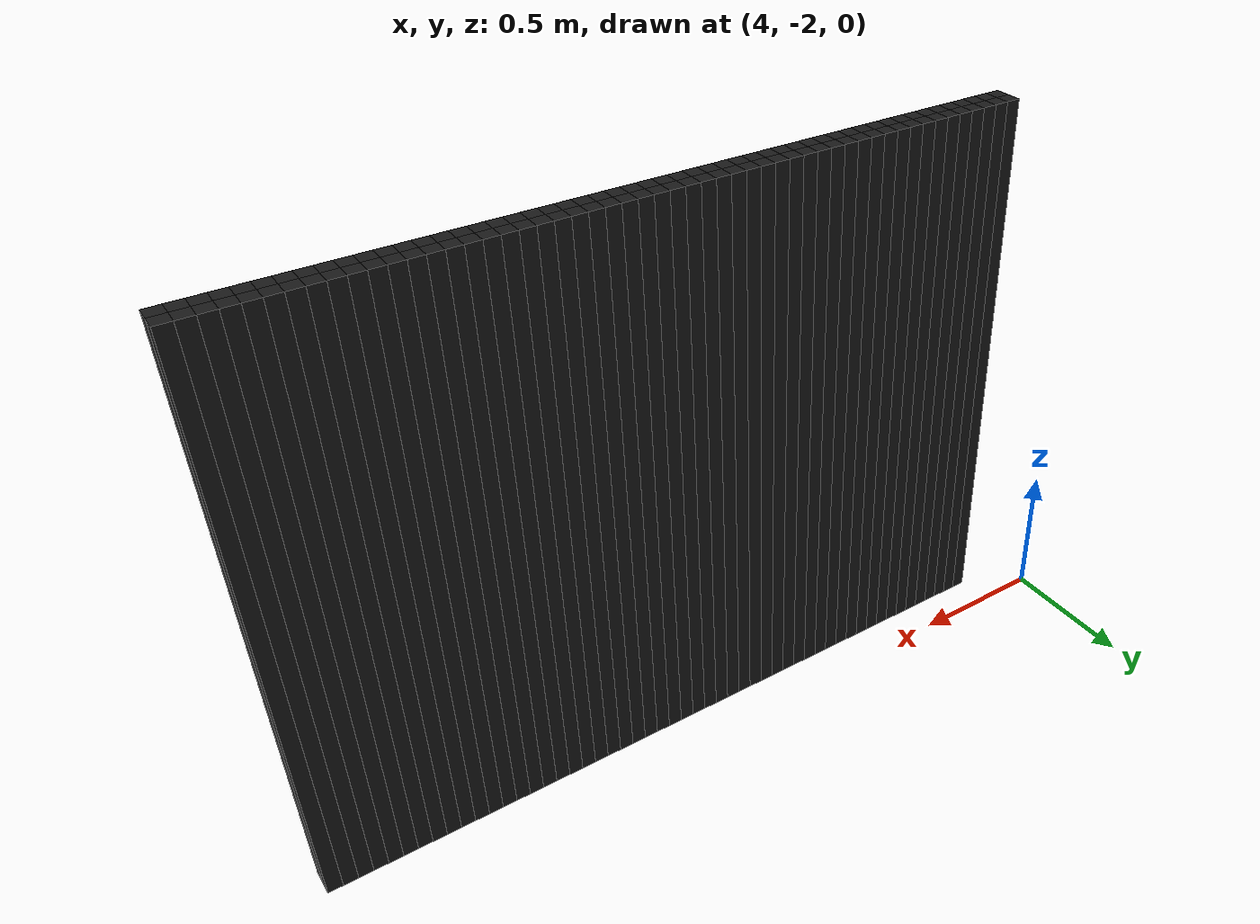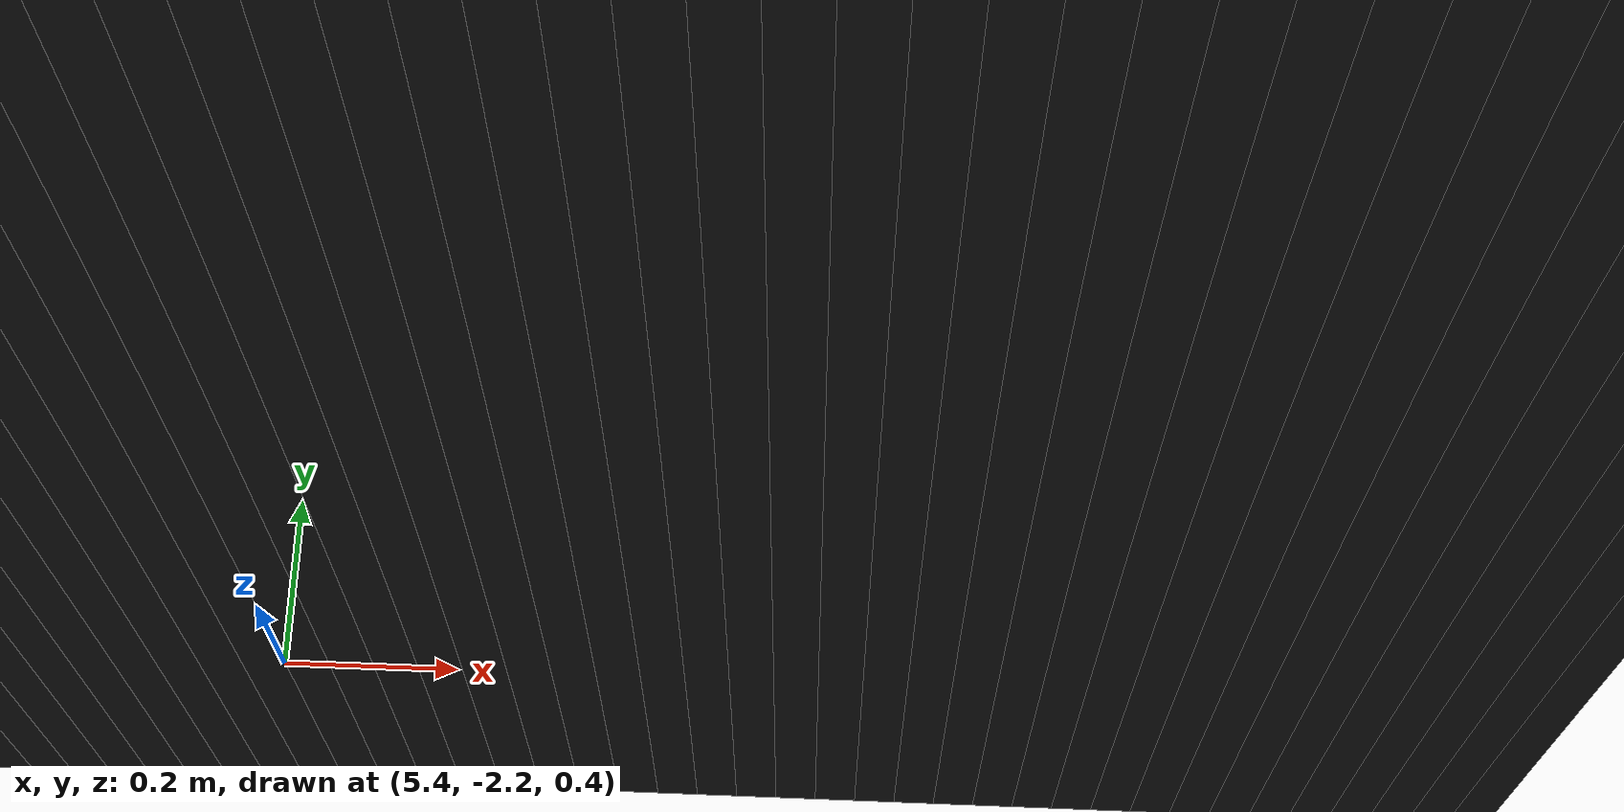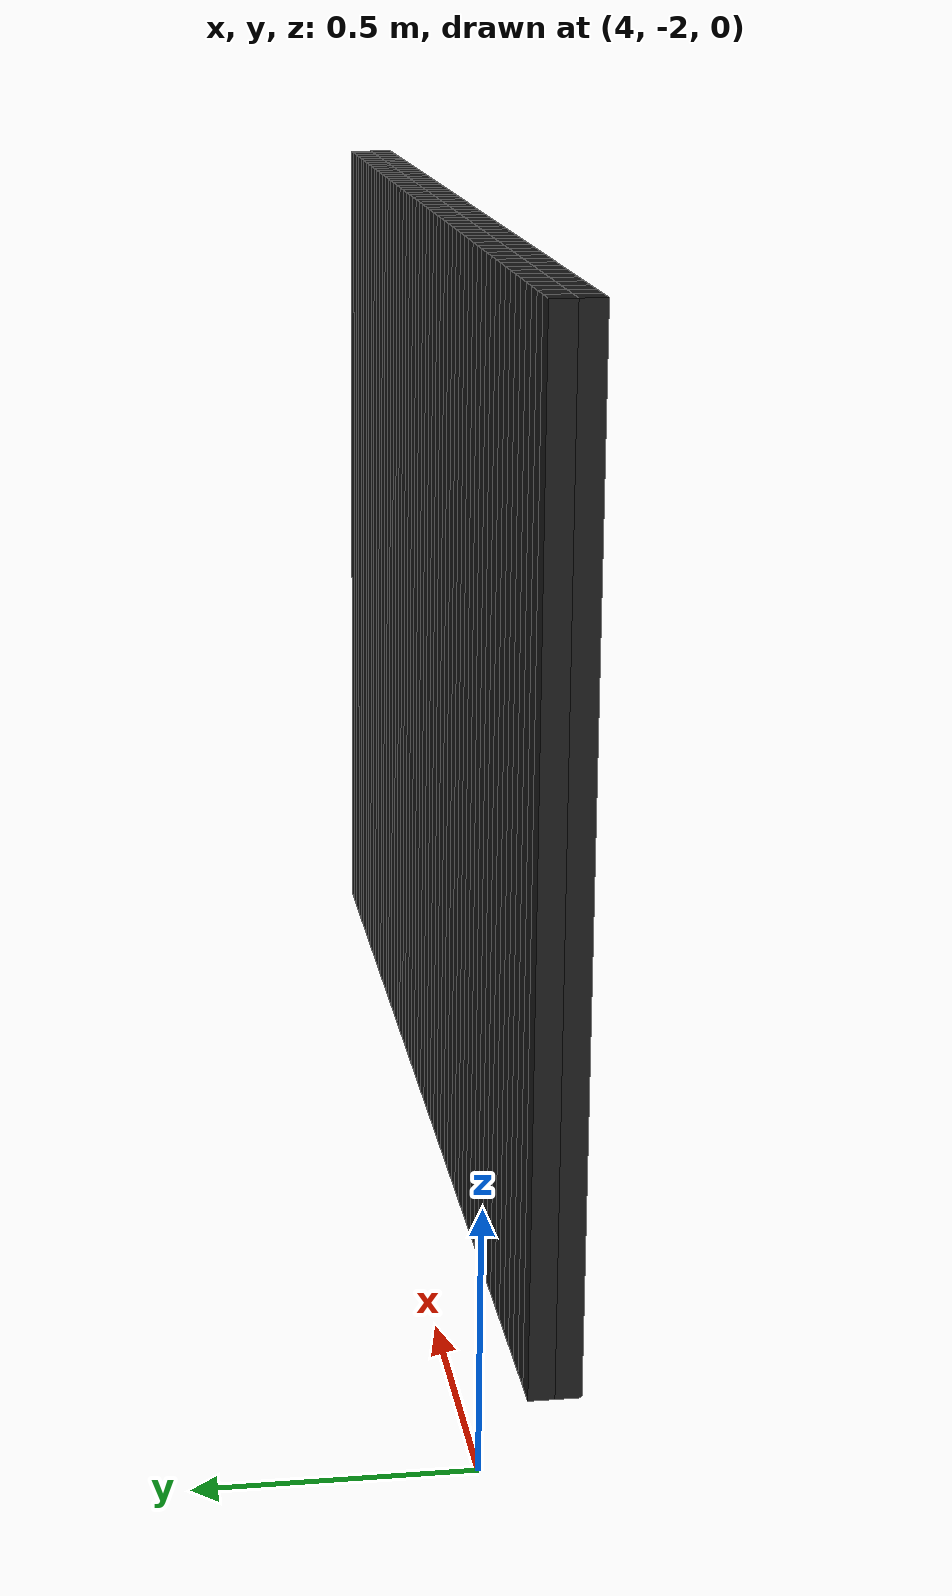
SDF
<sdf version="1.6">
 <model name="obstacle_175_210">
  <pose>4.24 -2.1500000000000004 1.0 0 0 0</pose>
  <static>true</static>
  <link name="box_link">
   <collision name="box_collision"><geometry><box><size>0.05 0.05 2.0</size></box></geometry></collision>
   <visual name="box_visual">
    <geometry><box><size>0.05 0.05 2.0</size></box></geometry>
    <material><ambient>0 0 0 1</ambient><diffuse>0.1 0.1 0.1 1</diffuse></material>
   </visual>
  </link>
 </model>
 <model name="obstacle_176_210">
  <pose>4.290000000000001 -2.1500000000000004 1.0 0 0 0</pose>
  <static>true</static>
  <link name="box_link">
   <collision name="box_collision"><geometry><box><size>0.05 0.05 2.0</size></box></geometry></collision>
   <visual name="box_visual">
    <geometry><box><size>0.05 0.05 2.0</size></box></geometry>
    <material><ambient>0 0 0 1</ambient><diffuse>0.1 0.1 0.1 1</diffuse></material>
   </visual>
  </link>
 </model>
 <model name="obstacle_177_210">
  <pose>4.34 -2.1500000000000004 1.0 0 0 0</pose>
  <static>true</static>
  <link name="box_link">
   <collision name="box_collision"><geometry><box><size>0.05 0.05 2.0</size></box></geometry></collision>
   <visual name="box_visual">
    <geometry><box><size>0.05 0.05 2.0</size></box></geometry>
    <material><ambient>0 0 0 1</ambient><diffuse>0.1 0.1 0.1 1</diffuse></material>
   </visual>
  </link>
 </model>
 <model name="obstacle_178_210">
  <pose>4.390000000000001 -2.1500000000000004 1.0 0 0 0</pose>
  <static>true</static>
  <link name="box_link">
   <collision name="box_collision"><geometry><box><size>0.05 0.05 2.0</size></box></geometry></collision>
   <visual name="box_visual">
    <geometry><box><size>0.05 0.05 2.0</size></box></geometry>
    <material><ambient>0 0 0 1</ambient><diffuse>0.1 0.1 0.1 1</diffuse></material>
   </visual>
  </link>
 </model>
 <model name="obstacle_179_210">
  <pose>4.440000000000001 -2.1500000000000004 1.0 0 0 0</pose>
  <static>true</static>
  <link name="box_link">
   <collision name="box_collision"><geometry><box><size>0.05 0.05 2.0</size></box></geometry></collision>
   <visual name="box_visual">
    <geometry><box><size>0.05 0.05 2.0</size></box></geometry>
    <material><ambient>0 0 0 1</ambient><diffuse>0.1 0.1 0.1 1</diffuse></material>
   </visual>
  </link>
 </model>
 <model name="obstacle_180_210">
  <pose>4.49 -2.1500000000000004 1.0 0 0 0</pose>
  <static>true</static>
  <link name="box_link">
   <collision name="box_collision"><geometry><box><size>0.05 0.05 2.0</size></box></geometry></collision>
   <visual name="box_visual">
    <geometry><box><size>0.05 0.05 2.0</size></box></geometry>
    <material><ambient>0 0 0 1</ambient><diffuse>0.1 0.1 0.1 1</diffuse></material>
   </visual>
  </link>
 </model>
 <model name="obstacle_181_210">
  <pose>4.540000000000001 -2.1500000000000004 1.0 0 0 0</pose>
  <static>true</static>
  <link name="box_link">
   <collision name="box_collision"><geometry><box><size>0.05 0.05 2.0</size></box></geometry></collision>
   <visual name="box_visual">
    <geometry><box><size>0.05 0.05 2.0</size></box></geometry>
    <material><ambient>0 0 0 1</ambient><diffuse>0.1 0.1 0.1 1</diffuse></material>
   </visual>
  </link>
 </model>
 <model name="obstacle_182_210">
  <pose>4.59 -2.1500000000000004 1.0 0 0 0</pose>
  <static>true</static>
  <link name="box_link">
   <collision name="box_collision"><geometry><box><size>0.05 0.05 2.0</size></box></geometry></collision>
   <visual name="box_visual">
    <geometry><box><size>0.05 0.05 2.0</size></box></geometry>
    <material><ambient>0 0 0 1</ambient><diffuse>0.1 0.1 0.1 1</diffuse></material>
   </visual>
  </link>
 </model>
 <model name="obstacle_183_210">
  <pose>4.640000000000001 -2.1500000000000004 1.0 0 0 0</pose>
  <static>true</static>
  <link name="box_link">
   <collision name="box_collision"><geometry><box><size>0.05 0.05 2.0</size></box></geometry></collision>
   <visual name="box_visual">
    <geometry><box><size>0.05 0.05 2.0</size></box></geometry>
    <material><ambient>0 0 0 1</ambient><diffuse>0.1 0.1 0.1 1</diffuse></material>
   </visual>
  </link>
 </model>
 <model name="obstacle_184_210">
  <pose>4.690000000000001 -2.1500000000000004 1.0 0 0 0</pose>
  <static>true</static>
  <link name="box_link">
   <collision name="box_collision"><geometry><box><size>0.05 0.05 2.0</size></box></geometry></collision>
   <visual name="box_visual">
    <geometry><box><size>0.05 0.05 2.0</size></box></geometry>
    <material><ambient>0 0 0 1</ambient><diffuse>0.1 0.1 0.1 1</diffuse></material>
   </visual>
  </link>
 </model>
 <model name="obstacle_185_210">
  <pose>4.74 -2.1500000000000004 1.0 0 0 0</pose>
  <static>true</static>
  <link name="box_link">
   <collision name="box_collision"><geometry><box><size>0.05 0.05 2.0</size></box></geometry></collision>
   <visual name="box_visual">
    <geometry><box><size>0.05 0.05 2.0</size></box></geometry>
    <material><ambient>0 0 0 1</ambient><diffuse>0.1 0.1 0.1 1</diffuse></material>
   </visual>
  </link>
 </model>
 <model name="obstacle_186_210">
  <pose>4.790000000000001 -2.1500000000000004 1.0 0 0 0</pose>
  <static>true</static>
  <link name="box_link">
   <collision name="box_collision"><geometry><box><size>0.05 0.05 2.0</size></box></geometry></collision>
   <visual name="box_visual">
    <geometry><box><size>0.05 0.05 2.0</size></box></geometry>
    <material><ambient>0 0 0 1</ambient><diffuse>0.1 0.1 0.1 1</diffuse></material>
   </visual>
  </link>
 </model>
 <model name="obstacle_187_210">
  <pose>4.84 -2.1500000000000004 1.0 0 0 0</pose>
  <static>true</static>
  <link name="box_link">
   <collision name="box_collision"><geometry><box><size>0.05 0.05 2.0</size></box></geometry></collision>
   <visual name="box_visual">
    <geometry><box><size>0.05 0.05 2.0</size></box></geometry>
    <material><ambient>0 0 0 1</ambient><diffuse>0.1 0.1 0.1 1</diffuse></material>
   </visual>
  </link>
 </model>
 <model name="obstacle_188_210">
  <pose>4.890000000000001 -2.1500000000000004 1.0 0 0 0</pose>
  <static>true</static>
  <link name="box_link">
   <collision name="box_collision"><geometry><box><size>0.05 0.05 2.0</size></box></geometry></collision>
   <visual name="box_visual">
    <geometry><box><size>0.05 0.05 2.0</size></box></geometry>
    <material><ambient>0 0 0 1</ambient><diffuse>0.1 0.1 0.1 1</diffuse></material>
   </visual>
  </link>
 </model>
 <model name="obstacle_189_210">
  <pose>4.940000000000001 -2.1500000000000004 1.0 0 0 0</pose>
  <static>true</static>
  <link name="box_link">
   <collision name="box_collision"><geometry><box><size>0.05 0.05 2.0</size></box></geometry></collision>
   <visual name="box_visual">
    <geometry><box><size>0.05 0.05 2.0</size></box></geometry>
    <material><ambient>0 0 0 1</ambient><diffuse>0.1 0.1 0.1 1</diffuse></material>
   </visual>
  </link>
 </model>
 <model name="obstacle_190_210">
  <pose>4.99 -2.1500000000000004 1.0 0 0 0</pose>
  <static>true</static>
  <link name="box_link">
   <collision name="box_collision"><geometry><box><size>0.05 0.05 2.0</size></box></geometry></collision>
   <visual name="box_visual">
    <geometry><box><size>0.05 0.05 2.0</size></box></geometry>
    <material><ambient>0 0 0 1</ambient><diffuse>0.1 0.1 0.1 1</diffuse></material>
   </visual>
  </link>
 </model>
 <model name="obstacle_191_210">
  <pose>5.040000000000001 -2.1500000000000004 1.0 0 0 0</pose>
  <static>true</static>
  <link name="box_link">
   <collision name="box_collision"><geometry><box><size>0.05 0.05 2.0</size></box></geometry></collision>
   <visual name="box_visual">
    <geometry><box><size>0.05 0.05 2.0</size></box></geometry>
    <material><ambient>0 0 0 1</ambient><diffuse>0.1 0.1 0.1 1</diffuse></material>
   </visual>
  </link>
 </model>
 <model name="obstacle_192_210">
  <pose>5.090000000000002 -2.1500000000000004 1.0 0 0 0</pose>
  <static>true</static>
  <link name="box_link">
   <collision name="box_collision"><geometry><box><size>0.05 0.05 2.0</size></box></geometry></collision>
   <visual name="box_visual">
    <geometry><box><size>0.05 0.05 2.0</size></box></geometry>
    <material><ambient>0 0 0 1</ambient><diffuse>0.1 0.1 0.1 1</diffuse></material>
   </visual>
  </link>
 </model>
 <model name="obstacle_193_210">
  <pose>5.140000000000001 -2.1500000000000004 1.0 0 0 0</pose>
  <static>true</static>
  <link name="box_link">
   <collision name="box_collision"><geometry><box><size>0.05 0.05 2.0</size></box></geometry></collision>
   <visual name="box_visual">
    <geometry><box><size>0.05 0.05 2.0</size></box></geometry>
    <material><ambient>0 0 0 1</ambient><diffuse>0.1 0.1 0.1 1</diffuse></material>
   </visual>
  </link>
 </model>
 <model name="obstacle_194_210">
  <pose>5.190000000000001 -2.1500000000000004 1.0 0 0 0</pose>
  <static>true</static>
  <link name="box_link">
   <collision name="box_collision"><geometry><box><size>0.05 0.05 2.0</size></box></geometry></collision>
   <visual name="box_visual">
    <geometry><box><size>0.05 0.05 2.0</size></box></geometry>
    <material><ambient>0 0 0 1</ambient><diffuse>0.1 0.1 0.1 1</diffuse></material>
   </visual>
  </link>
 </model>
 <model name="obstacle_195_210">
  <pose>5.24 -2.1500000000000004 1.0 0 0 0</pose>
  <static>true</static>
  <link name="box_link">
   <collision name="box_collision"><geometry><box><size>0.05 0.05 2.0</size></box></geometry></collision>
   <visual name="box_visual">
    <geometry><box><size>0.05 0.05 2.0</size></box></geometry>
    <material><ambient>0 0 0 1</ambient><diffuse>0.1 0.1 0.1 1</diffuse></material>
   </visual>
  </link>
 </model>
 <model name="obstacle_196_210">
  <pose>5.290000000000001 -2.1500000000000004 1.0 0 0 0</pose>
  <static>true</static>
  <link name="box_link">
   <collision name="box_collision"><geometry><box><size>0.05 0.05 2.0</size></box></geometry></collision>
   <visual name="box_visual">
    <geometry><box><size>0.05 0.05 2.0</size></box></geometry>
    <material><ambient>0 0 0 1</ambient><diffuse>0.1 0.1 0.1 1</diffuse></material>
   </visual>
  </link>
 </model>
 <model name="obstacle_197_210">
  <pose>5.340000000000002 -2.1500000000000004 1.0 0 0 0</pose>
  <static>true</static>
  <link name="box_link">
   <collision name="box_collision"><geometry><box><size>0.05 0.05 2.0</size></box></geometry></collision>
   <visual name="box_visual">
    <geometry><box><size>0.05 0.05 2.0</size></box></geometry>
    <material><ambient>0 0 0 1</ambient><diffuse>0.1 0.1 0.1 1</diffuse></material>
   </visual>
  </link>
 </model>
 <model name="obstacle_198_210">
  <pose>5.390000000000001 -2.1500000000000004 1.0 0 0 0</pose>
  <static>true</static>
  <link name="box_link">
   <collision name="box_collision"><geometry><box><size>0.05 0.05 2.0</size></box></geometry></collision>
   <visual name="box_visual">
    <geometry><box><size>0.05 0.05 2.0</size></box></geometry>
    <material><ambient>0 0 0 1</ambient><diffuse>0.1 0.1 0.1 1</diffuse></material>
   </visual>
  </link>
 </model>
 <model name="obstacle_199_210">
  <pose>5.440000000000001 -2.1500000000000004 1.0 0 0 0</pose>
  <static>true</static>
  <link name="box_link">
   <collision name="box_collision"><geometry><box><size>0.05 0.05 2.0</size></box></geometry></collision>
   <visual name="box_visual">
    <geometry><box><size>0.05 0.05 2.0</size></box></geometry>
    <material><ambient>0 0 0 1</ambient><diffuse>0.1 0.1 0.1 1</diffuse></material>
   </visual>
  </link>
 </model>
 <model name="obstacle_200_210">
  <pose>5.49 -2.1500000000000004 1.0 0 0 0</pose>
  <static>true</static>
  <link name="box_link">
   <collision name="box_collision"><geometry><box><size>0.05 0.05 2.0</size></box></geometry></collision>
   <visual name="box_visual">
    <geometry><box><size>0.05 0.05 2.0</size></box></geometry>
    <material><ambient>0 0 0 1</ambient><diffuse>0.1 0.1 0.1 1</diffuse></material>
   </visual>
  </link>
 </model>
 <model name="obstacle_201_210">
  <pose>5.540000000000001 -2.1500000000000004 1.0 0 0 0</pose>
  <static>true</static>
  <link name="box_link">
   <collision name="box_collision"><geometry><box><size>0.05 0.05 2.0</size></box></geometry></collision>
   <visual name="box_visual">
    <geometry><box><size>0.05 0.05 2.0</size></box></geometry>
    <material><ambient>0 0 0 1</ambient><diffuse>0.1 0.1 0.1 1</diffuse></material>
   </visual>
  </link>
 </model>
 <model name="obstacle_202_210">
  <pose>5.590000000000002 -2.1500000000000004 1.0 0 0 0</pose>
  <static>true</static>
  <link name="box_link">
   <collision name="box_collision"><geometry><box><size>0.05 0.05 2.0</size></box></geometry></collision>
   <visual name="box_visual">
    <geometry><box><size>0.05 0.05 2.0</size></box></geometry>
    <material><ambient>0 0 0 1</ambient><diffuse>0.1 0.1 0.1 1</diffuse></material>
   </visual>
  </link>
 </model>
 <model name="obstacle_203_210">
  <pose>5.640000000000001 -2.1500000000000004 1.0 0 0 0</pose>
  <static>true</static>
  <link name="box_link">
   <collision name="box_collision"><geometry><box><size>0.05 0.05 2.0</size></box></geometry></collision>
   <visual name="box_visual">
    <geometry><box><size>0.05 0.05 2.0</size></box></geometry>
    <material><ambient>0 0 0 1</ambient><diffuse>0.1 0.1 0.1 1</diffuse></material>
   </visual>
  </link>
 </model>
 <model name="obstacle_204_210">
  <pose>5.690000000000001 -2.1500000000000004 1.0 0 0 0</pose>
  <static>true</static>
  <link name="box_link">
   <collision name="box_collision"><geometry><box><size>0.05 0.05 2.0</size></box></geometry></collision>
   <visual name="box_visual">
    <geometry><box><size>0.05 0.05 2.0</size></box></geometry>
    <material><ambient>0 0 0 1</ambient><diffuse>0.1 0.1 0.1 1</diffuse></material>
   </visual>
  </link>
 </model>
 <model name="obstacle_205_210">
  <pose>5.74 -2.1500000000000004 1.0 0 0 0</pose>
  <static>true</static>
  <link name="box_link">
   <collision name="box_collision"><geometry><box><size>0.05 0.05 2.0</size></box></geometry></collision>
   <visual name="box_visual">
    <geometry><box><size>0.05 0.05 2.0</size></box></geometry>
    <material><ambient>0 0 0 1</ambient><diffuse>0.1 0.1 0.1 1</diffuse></material>
   </visual>
  </link>
 </model>
 <model name="obstacle_206_210">
  <pose>5.790000000000001 -2.1500000000000004 1.0 0 0 0</pose>
  <static>true</static>
  <link name="box_link">
   <collision name="box_collision"><geometry><box><size>0.05 0.05 2.0</size></box></geometry></collision>
   <visual name="box_visual">
    <geometry><box><size>0.05 0.05 2.0</size></box></geometry>
    <material><ambient>0 0 0 1</ambient><diffuse>0.1 0.1 0.1 1</diffuse></material>
   </visual>
  </link>
 </model>
 <model name="obstacle_207_210">
  <pose>5.840000000000002 -2.1500000000000004 1.0 0 0 0</pose>
  <static>true</static>
  <link name="box_link">
   <collision name="box_collision"><geometry><box><size>0.05 0.05 2.0</size></box></geometry></collision>
   <visual name="box_visual">
    <geometry><box><size>0.05 0.05 2.0</size></box></geometry>
    <material><ambient>0 0 0 1</ambient><diffuse>0.1 0.1 0.1 1</diffuse></material>
   </visual>
  </link>
 </model>
 <model name="obstacle_208_210">
  <pose>5.890000000000001 -2.1500000000000004 1.0 0 0 0</pose>
  <static>true</static>
  <link name="box_link">
   <collision name="box_collision"><geometry><box><size>0.05 0.05 2.0</size></box></geometry></collision>
   <visual name="box_visual">
    <geometry><box><size>0.05 0.05 2.0</size></box></geometry>
    <material><ambient>0 0 0 1</ambient><diffuse>0.1 0.1 0.1 1</diffuse></material>
   </visual>
  </link>
 </model>
 <model name="obstacle_209_210">
  <pose>5.940000000000001 -2.1500000000000004 1.0 0 0 0</pose>
  <static>true</static>
  <link name="box_link">
   <collision name="box_collision"><geometry><box><size>0.05 0.05 2.0</size></box></geometry></collision>
   <visual name="box_visual">
    <geometry><box><size>0.05 0.05 2.0</size></box></geometry>
    <material><ambient>0 0 0 1</ambient><diffuse>0.1 0.1 0.1 1</diffuse></material>
   </visual>
  </link>
 </model>
 <model name="obstacle_210_210">
  <pose>5.99 -2.1500000000000004 1.0 0 0 0</pose>
  <static>true</static>
  <link name="box_link">
   <collision name="box_collision"><geometry><box><size>0.05 0.05 2.0</size></box></geometry></collision>
   <visual name="box_visual">
    <geometry><box><size>0.05 0.05 2.0</size></box></geometry>
    <material><ambient>0 0 0 1</ambient><diffuse>0.1 0.1 0.1 1</diffuse></material>
   </visual>
  </link>
 </model>
 <model name="obstacle_211_210">
  <pose>6.040000000000001 -2.1500000000000004 1.0 0 0 0</pose>
  <static>true</static>
  <link name="box_link">
   <collision name="box_collision"><geometry><box><size>0.05 0.05 2.0</size></box></geometry></collision>
   <visual name="box_visual">
    <geometry><box><size>0.05 0.05 2.0</size></box></geometry>
    <material><ambient>0 0 0 1</ambient><diffuse>0.1 0.1 0.1 1</diffuse></material>
   </visual>
  </link>
 </model>
 <model name="obstacle_212_210">
  <pose>6.090000000000002 -2.1500000000000004 1.0 0 0 0</pose>
  <static>true</static>
  <link name="box_link">
   <collision name="box_collision"><geometry><box><size>0.05 0.05 2.0</size></box></geometry></collision>
   <visual name="box_visual">
    <geometry><box><size>0.05 0.05 2.0</size></box></geometry>
    <material><ambient>0 0 0 1</ambient><diffuse>0.1 0.1 0.1 1</diffuse></material>
   </visual>
  </link>
 </model>
 <model name="obstacle_213_210">
  <pose>6.140000000000001 -2.1500000000000004 1.0 0 0 0</pose>
  <static>true</static>
  <link name="box_link">
   <collision name="box_collision"><geometry><box><size>0.05 0.05 2.0</size></box></geometry></collision>
   <visual name="box_visual">
    <geometry><box><size>0.05 0.05 2.0</size></box></geometry>
    <material><ambient>0 0 0 1</ambient><diffuse>0.1 0.1 0.1 1</diffuse></material>
   </visual>
  </link>
 </model>
 <model name="obstacle_214_210">
  <pose>6.190000000000001 -2.1500000000000004 1.0 0 0 0</pose>
  <static>true</static>
  <link name="box_link">
   <collision name="box_collision"><geometry><box><size>0.05 0.05 2.0</size></box></geometry></collision>
   <visual name="box_visual">
    <geometry><box><size>0.05 0.05 2.0</size></box></geometry>
    <material><ambient>0 0 0 1</ambient><diffuse>0.1 0.1 0.1 1</diffuse></material>
   </visual>
  </link>
 </model>
 <model name="obstacle_215_210">
  <pose>6.24 -2.1500000000000004 1.0 0 0 0</pose>
  <static>true</static>
  <link name="box_link">
   <collision name="box_collision"><geometry><box><size>0.05 0.05 2.0</size></box></geometry></collision>
   <visual name="box_visual">
    <geometry><box><size>0.05 0.05 2.0</size></box></geometry>
    <material><ambient>0 0 0 1</ambient><diffuse>0.1 0.1 0.1 1</diffuse></material>
   </visual>
  </link>
 </model>
 <model name="obstacle_216_210">
  <pose>6.290000000000001 -2.1500000000000004 1.0 0 0 0</pose>
  <static>true</static>
  <link name="box_link">
   <collision name="box_collision"><geometry><box><size>0.05 0.05 2.0</size></box></geometry></collision>
   <visual name="box_visual">
    <geometry><box><size>0.05 0.05 2.0</size></box></geometry>
    <material><ambient>0 0 0 1</ambient><diffuse>0.1 0.1 0.1 1</diffuse></material>
   </visual>
  </link>
 </model>
 <model name="obstacle_217_210">
  <pose>6.340000000000002 -2.1500000000000004 1.0 0 0 0</pose>
  <static>true</static>
  <link name="box_link">
   <collision name="box_collision"><geometry><box><size>0.05 0.05 2.0</size></box></geometry></collision>
   <visual name="box_visual">
    <geometry><box><size>0.05 0.05 2.0</size></box></geometry>
    <material><ambient>0 0 0 1</ambient><diffuse>0.1 0.1 0.1 1</diffuse></material>
   </visual>
  </link>
 </model>
 <model name="obstacle_218_210">
  <pose>6.390000000000001 -2.1500000000000004 1.0 0 0 0</pose>
  <static>true</static>
  <link name="box_link">
   <collision name="box_collision"><geometry><box><size>0.05 0.05 2.0</size></box></geometry></collision>
   <visual name="box_visual">
    <geometry><box><size>0.05 0.05 2.0</size></box></geometry>
    <material><ambient>0 0 0 1</ambient><diffuse>0.1 0.1 0.1 1</diffuse></material>
   </visual>
  </link>
 </model>
 <model name="obstacle_219_210">
  <pose>6.440000000000001 -2.1500000000000004 1.0 0 0 0</pose>
  <static>true</static>
  <link name="box_link">
   <collision name="box_collision"><geometry><box><size>0.05 0.05 2.0</size></box></geometry></collision>
   <visual name="box_visual">
    <geometry><box><size>0.05 0.05 2.0</size></box></geometry>
    <material><ambient>0 0 0 1</ambient><diffuse>0.1 0.1 0.1 1</diffuse></material>
   </visual>
  </link>
 </model>
 <model name="obstacle_220_210">
  <pose>6.49 -2.1500000000000004 1.0 0 0 0</pose>
  <static>true</static>
  <link name="box_link">
   <collision name="box_collision"><geometry><box><size>0.05 0.05 2.0</size></box></geometry></collision>
   <visual name="box_visual">
    <geometry><box><size>0.05 0.05 2.0</size></box></geometry>
    <material><ambient>0 0 0 1</ambient><diffuse>0.1 0.1 0.1 1</diffuse></material>
   </visual>
  </link>
 </model>
 <model name="obstacle_221_210">
  <pose>6.540000000000001 -2.1500000000000004 1.0 0 0 0</pose>
  <static>true</static>
  <link name="box_link">
   <collision name="box_collision"><geometry><box><size>0.05 0.05 2.0</size></box></geometry></collision>
   <visual name="box_visual">
    <geometry><box><size>0.05 0.05 2.0</size></box></geometry>
    <material><ambient>0 0 0 1</ambient><diffuse>0.1 0.1 0.1 1</diffuse></material>
   </visual>
  </link>
 </model>
 <model name="obstacle_222_210">
  <pose>6.590000000000002 -2.1500000000000004 1.0 0 0 0</pose>
  <static>true</static>
  <link name="box_link">
   <collision name="box_collision"><geometry><box><size>0.05 0.05 2.0</size></box></geometry></collision>
   <visual name="box_visual">
    <geometry><box><size>0.05 0.05 2.0</size></box></geometry>
    <material><ambient>0 0 0 1</ambient><diffuse>0.1 0.1 0.1 1</diffuse></material>
   </visual>
  </link>
 </model>
 <model name="obstacle_223_210">
  <pose>6.640000000000001 -2.1500000000000004 1.0 0 0 0</pose>
  <static>true</static>
  <link name="box_link">
   <collision name="box_collision"><geometry><box><size>0.05 0.05 2.0</size></box></geometry></collision>
   <visual name="box_visual">
    <geometry><box><size>0.05 0.05 2.0</size></box></geometry>
    <material><ambient>0 0 0 1</ambient><diffuse>0.1 0.1 0.1 1</diffuse></material>
   </visual>
  </link>
 </model>
 <model name="obstacle_224_210">
  <pose>6.690000000000001 -2.1500000000000004 1.0 0 0 0</pose>
  <static>true</static>
  <link name="box_link">
   <collision name="box_collision"><geometry><box><size>0.05 0.05 2.0</size></box></geometry></collision>
   <visual name="box_visual">
    <geometry><box><size>0.05 0.05 2.0</size></box></geometry>
    <material><ambient>0 0 0 1</ambient><diffuse>0.1 0.1 0.1 1</diffuse></material>
   </visual>
  </link>
 </model>
 <model name="obstacle_225_210">
  <pose>6.74 -2.1500000000000004 1.0 0 0 0</pose>
  <static>true</static>
  <link name="box_link">
   <collision name="box_collision"><geometry><box><size>0.05 0.05 2.0</size></box></geometry></collision>
   <visual name="box_visual">
    <geometry><box><size>0.05 0.05 2.0</size></box></geometry>
    <material><ambient>0 0 0 1</ambient><diffuse>0.1 0.1 0.1 1</diffuse></material>
   </visual>
  </link>
 </model>
 <model name="obstacle_226_210">
  <pose>6.790000000000001 -2.1500000000000004 1.0 0 0 0</pose>
  <static>true</static>
  <link name="box_link">
   <collision name="box_collision"><geometry><box><size>0.05 0.05 2.0</size></box></geometry></collision>
   <visual name="box_visual">
    <geometry><box><size>0.05 0.05 2.0</size></box></geometry>
    <material><ambient>0 0 0 1</ambient><diffuse>0.1 0.1 0.1 1</diffuse></material>
   </visual>
  </link>
 </model>
 <model name="obstacle_227_210">
  <pose>6.840000000000002 -2.1500000000000004 1.0 0 0 0</pose>
  <static>true</static>
  <link name="box_link">
   <collision name="box_collision"><geometry><box><size>0.05 0.05 2.0</size></box></geometry></collision>
   <visual name="box_visual">
    <geometry><box><size>0.05 0.05 2.0</size></box></geometry>
    <material><ambient>0 0 0 1</ambient><diffuse>0.1 0.1 0.1 1</diffuse></material>
   </visual>
  </link>
 </model>
 <model name="obstacle_175_211">
  <pose>4.24 -2.2 1.0 0 0 0</pose>
  <static>true</static>
  <link name="box_link">
   <collision name="box_collision"><geometry><box><size>0.05 0.05 2.0</size></box></geometry></collision>
   <visual name="box_visual">
    <geometry><box><size>0.05 0.05 2.0</size></box></geometry>
    <material><ambient>0 0 0 1</ambient><diffuse>0.1 0.1 0.1 1</diffuse></material>
   </visual>
  </link>
 </model>
 <model name="obstacle_176_211">
  <pose>4.290000000000001 -2.2 1.0 0 0 0</pose>
  <static>true</static>
  <link name="box_link">
   <collision name="box_collision"><geometry><box><size>0.05 0.05 2.0</size></box></geometry></collision>
   <visual name="box_visual">
    <geometry><box><size>0.05 0.05 2.0</size></box></geometry>
    <material><ambient>0 0 0 1</ambient><diffuse>0.1 0.1 0.1 1</diffuse></material>
   </visual>
  </link>
 </model>
 <model name="obstacle_177_211">
  <pose>4.34 -2.2 1.0 0 0 0</pose>
  <static>true</static>
  <link name="box_link">
   <collision name="box_collision"><geometry><box><size>0.05 0.05 2.0</size></box></geometry></collision>
   <visual name="box_visual">
    <geometry><box><size>0.05 0.05 2.0</size></box></geometry>
    <material><ambient>0 0 0 1</ambient><diffuse>0.1 0.1 0.1 1</diffuse></material>
   </visual>
  </link>
 </model>
 <model name="obstacle_178_211">
  <pose>4.390000000000001 -2.2 1.0 0 0 0</pose>
  <static>true</static>
  <link name="box_link">
   <collision name="box_collision"><geometry><box><size>0.05 0.05 2.0</size></box></geometry></collision>
   <visual name="box_visual">
    <geometry><box><size>0.05 0.05 2.0</size></box></geometry>
    <material><ambient>0 0 0 1</ambient><diffuse>0.1 0.1 0.1 1</diffuse></material>
   </visual>
  </link>
 </model>
 <model name="obstacle_179_211">
  <pose>4.440000000000001 -2.2 1.0 0 0 0</pose>
  <static>true</static>
  <link name="box_link">
   <collision name="box_collision"><geometry><box><size>0.05 0.05 2.0</size></box></geometry></collision>
   <visual name="box_visual">
    <geometry><box><size>0.05 0.05 2.0</size></box></geometry>
    <material><ambient>0 0 0 1</ambient><diffuse>0.1 0.1 0.1 1</diffuse></material>
   </visual>
  </link>
 </model>
 <model name="obstacle_180_211">
  <pose>4.49 -2.2 1.0 0 0 0</pose>
  <static>true</static>
  <link name="box_link">
   <collision name="box_collision"><geometry><box><size>0.05 0.05 2.0</size></box></geometry></collision>
   <visual name="box_visual">
    <geometry><box><size>0.05 0.05 2.0</size></box></geometry>
    <material><ambient>0 0 0 1</ambient><diffuse>0.1 0.1 0.1 1</diffuse></material>
   </visual>
  </link>
 </model>
 <model name="obstacle_181_211">
  <pose>4.540000000000001 -2.2 1.0 0 0 0</pose>
  <static>true</static>
  <link name="box_link">
   <collision name="box_collision"><geometry><box><size>0.05 0.05 2.0</size></box></geometry></collision>
   <visual name="box_visual">
    <geometry><box><size>0.05 0.05 2.0</size></box></geometry>
    <material><ambient>0 0 0 1</ambient><diffuse>0.1 0.1 0.1 1</diffuse></material>
   </visual>
  </link>
 </model>
 <model name="obstacle_182_211">
  <pose>4.59 -2.2 1.0 0 0 0</pose>
  <static>true</static>
  <link name="box_link">
   <collision name="box_collision"><geometry><box><size>0.05 0.05 2.0</size></box></geometry></collision>
   <visual name="box_visual">
    <geometry><box><size>0.05 0.05 2.0</size></box></geometry>
    <material><ambient>0 0 0 1</ambient><diffuse>0.1 0.1 0.1 1</diffuse></material>
   </visual>
  </link>
 </model>
 <model name="obstacle_183_211">
  <pose>4.640000000000001 -2.2 1.0 0 0 0</pose>
  <static>true</static>
  <link name="box_link">
   <collision name="box_collision"><geometry><box><size>0.05 0.05 2.0</size></box></geometry></collision>
   <visual name="box_visual">
    <geometry><box><size>0.05 0.05 2.0</size></box></geometry>
    <material><ambient>0 0 0 1</ambient><diffuse>0.1 0.1 0.1 1</diffuse></material>
   </visual>
  </link>
 </model>
 <model name="obstacle_184_211">
  <pose>4.690000000000001 -2.2 1.0 0 0 0</pose>
  <static>true</static>
  <link name="box_link">
   <collision name="box_collision"><geometry><box><size>0.05 0.05 2.0</size></box></geometry></collision>
   <visual name="box_visual">
    <geometry><box><size>0.05 0.05 2.0</size></box></geometry>
    <material><ambient>0 0 0 1</ambient><diffuse>0.1 0.1 0.1 1</diffuse></material>
   </visual>
  </link>
 </model>
 <model name="obstacle_185_211">
  <pose>4.74 -2.2 1.0 0 0 0</pose>
  <static>true</static>
  <link name="box_link">
   <collision name="box_collision"><geometry><box><size>0.05 0.05 2.0</size></box></geometry></collision>
   <visual name="box_visual">
    <geometry><box><size>0.05 0.05 2.0</size></box></geometry>
    <material><ambient>0 0 0 1</ambient><diffuse>0.1 0.1 0.1 1</diffuse></material>
   </visual>
  </link>
 </model>
 <model name="obstacle_186_211">
  <pose>4.790000000000001 -2.2 1.0 0 0 0</pose>
  <static>true</static>
  <link name="box_link">
   <collision name="box_collision"><geometry><box><size>0.05 0.05 2.0</size></box></geometry></collision>
   <visual name="box_visual">
    <geometry><box><size>0.05 0.05 2.0</size></box></geometry>
    <material><ambient>0 0 0 1</ambient><diffuse>0.1 0.1 0.1 1</diffuse></material>
   </visual>
  </link>
 </model>
 <model name="obstacle_187_211">
  <pose>4.84 -2.2 1.0 0 0 0</pose>
  <static>true</static>
  <link name="box_link">
   <collision name="box_collision"><geometry><box><size>0.05 0.05 2.0</size></box></geometry></collision>
   <visual name="box_visual">
    <geometry><box><size>0.05 0.05 2.0</size></box></geometry>
    <material><ambient>0 0 0 1</ambient><diffuse>0.1 0.1 0.1 1</diffuse></material>
   </visual>
  </link>
 </model>
 <model name="obstacle_188_211">
  <pose>4.890000000000001 -2.2 1.0 0 0 0</pose>
  <static>true</static>
  <link name="box_link">
   <collision name="box_collision"><geometry><box><size>0.05 0.05 2.0</size></box></geometry></collision>
   <visual name="box_visual">
    <geometry><box><size>0.05 0.05 2.0</size></box></geometry>
    <material><ambient>0 0 0 1</ambient><diffuse>0.1 0.1 0.1 1</diffuse></material>
   </visual>
  </link>
 </model>
 <model name="obstacle_189_211">
  <pose>4.940000000000001 -2.2 1.0 0 0 0</pose>
  <static>true</static>
  <link name="box_link">
   <collision name="box_collision"><geometry><box><size>0.05 0.05 2.0</size></box></geometry></collision>
   <visual name="box_visual">
    <geometry><box><size>0.05 0.05 2.0</size></box></geometry>
    <material><ambient>0 0 0 1</ambient><diffuse>0.1 0.1 0.1 1</diffuse></material>
   </visual>
  </link>
 </model>
 <model name="obstacle_190_211">
  <pose>4.99 -2.2 1.0 0 0 0</pose>
  <static>true</static>
  <link name="box_link">
   <collision name="box_collision"><geometry><box><size>0.05 0.05 2.0</size></box></geometry></collision>
   <visual name="box_visual">
    <geometry><box><size>0.05 0.05 2.0</size></box></geometry>
    <material><ambient>0 0 0 1</ambient><diffuse>0.1 0.1 0.1 1</diffuse></material>
   </visual>
  </link>
 </model>
 <model name="obstacle_191_211">
  <pose>5.040000000000001 -2.2 1.0 0 0 0</pose>
  <static>true</static>
  <link name="box_link">
   <collision name="box_collision"><geometry><box><size>0.05 0.05 2.0</size></box></geometry></collision>
   <visual name="box_visual">
    <geometry><box><size>0.05 0.05 2.0</size></box></geometry>
    <material><ambient>0 0 0 1</ambient><diffuse>0.1 0.1 0.1 1</diffuse></material>
   </visual>
  </link>
 </model>
 <model name="obstacle_192_211">
  <pose>5.090000000000002 -2.2 1.0 0 0 0</pose>
  <static>true</static>
  <link name="box_link">
   <collision name="box_collision"><geometry><box><size>0.05 0.05 2.0</size></box></geometry></collision>
   <visual name="box_visual">
    <geometry><box><size>0.05 0.05 2.0</size></box></geometry>
    <material><ambient>0 0 0 1</ambient><diffuse>0.1 0.1 0.1 1</diffuse></material>
   </visual>
  </link>
 </model>
 <model name="obstacle_193_211">
  <pose>5.140000000000001 -2.2 1.0 0 0 0</pose>
  <static>true</static>
  <link name="box_link">
   <collision name="box_collision"><geometry><box><size>0.05 0.05 2.0</size></box></geometry></collision>
   <visual name="box_visual">
    <geometry><box><size>0.05 0.05 2.0</size></box></geometry>
    <material><ambient>0 0 0 1</ambient><diffuse>0.1 0.1 0.1 1</diffuse></material>
   </visual>
  </link>
 </model>
 <model name="obstacle_194_211">
  <pose>5.190000000000001 -2.2 1.0 0 0 0</pose>
  <static>true</static>
  <link name="box_link">
   <collision name="box_collision"><geometry><box><size>0.05 0.05 2.0</size></box></geometry></collision>
   <visual name="box_visual">
    <geometry><box><size>0.05 0.05 2.0</size></box></geometry>
    <material><ambient>0 0 0 1</ambient><diffuse>0.1 0.1 0.1 1</diffuse></material>
   </visual>
  </link>
 </model>
 <model name="obstacle_195_211">
  <pose>5.24 -2.2 1.0 0 0 0</pose>
  <static>true</static>
  <link name="box_link">
   <collision name="box_collision"><geometry><box><size>0.05 0.05 2.0</size></box></geometry></collision>
   <visual name="box_visual">
    <geometry><box><size>0.05 0.05 2.0</size></box></geometry>
    <material><ambient>0 0 0 1</ambient><diffuse>0.1 0.1 0.1 1</diffuse></material>
   </visual>
  </link>
 </model>
 <model name="obstacle_196_211">
  <pose>5.290000000000001 -2.2 1.0 0 0 0</pose>
  <static>true</static>
  <link name="box_link">
   <collision name="box_collision"><geometry><box><size>0.05 0.05 2.0</size></box></geometry></collision>
   <visual name="box_visual">
    <geometry><box><size>0.05 0.05 2.0</size></box></geometry>
    <material><ambient>0 0 0 1</ambient><diffuse>0.1 0.1 0.1 1</diffuse></material>
   </visual>
  </link>
 </model>
 <model name="obstacle_197_211">
  <pose>5.340000000000002 -2.2 1.0 0 0 0</pose>
  <static>true</static>
  <link name="box_link">
   <collision name="box_collision"><geometry><box><size>0.05 0.05 2.0</size></box></geometry></collision>
   <visual name="box_visual">
    <geometry><box><size>0.05 0.05 2.0</size></box></geometry>
    <material><ambient>0 0 0 1</ambient><diffuse>0.1 0.1 0.1 1</diffuse></material>
   </visual>
  </link>
 </model>
 <model name="obstacle_198_211">
  <pose>5.390000000000001 -2.2 1.0 0 0 0</pose>
  <static>true</static>
  <link name="box_link">
   <collision name="box_collision"><geometry><box><size>0.05 0.05 2.0</size></box></geometry></collision>
   <visual name="box_visual">
    <geometry><box><size>0.05 0.05 2.0</size></box></geometry>
    <material><ambient>0 0 0 1</ambient><diffuse>0.1 0.1 0.1 1</diffuse></material>
   </visual>
  </link>
 </model>
 <model name="obstacle_199_211">
  <pose>5.440000000000001 -2.2 1.0 0 0 0</pose>
  <static>true</static>
  <link name="box_link">
   <collision name="box_collision"><geometry><box><size>0.05 0.05 2.0</size></box></geometry></collision>
   <visual name="box_visual">
    <geometry><box><size>0.05 0.05 2.0</size></box></geometry>
    <material><ambient>0 0 0 1</ambient><diffuse>0.1 0.1 0.1 1</diffuse></material>
   </visual>
  </link>
 </model>
 <model name="obstacle_200_211">
  <pose>5.49 -2.2 1.0 0 0 0</pose>
  <static>true</static>
  <link name="box_link">
   <collision name="box_collision"><geometry><box><size>0.05 0.05 2.0</size></box></geometry></collision>
   <visual name="box_visual">
    <geometry><box><size>0.05 0.05 2.0</size></box></geometry>
    <material><ambient>0 0 0 1</ambient><diffuse>0.1 0.1 0.1 1</diffuse></material>
   </visual>
  </link>
 </model>
 <model name="obstacle_201_211">
  <pose>5.540000000000001 -2.2 1.0 0 0 0</pose>
  <static>true</static>
  <link name="box_link">
   <collision name="box_collision"><geometry><box><size>0.05 0.05 2.0</size></box></geometry></collision>
   <visual name="box_visual">
    <geometry><box><size>0.05 0.05 2.0</size></box></geometry>
    <material><ambient>0 0 0 1</ambient><diffuse>0.1 0.1 0.1 1</diffuse></material>
   </visual>
  </link>
 </model>
 <model name="obstacle_202_211">
  <pose>5.590000000000002 -2.2 1.0 0 0 0</pose>
  <static>true</static>
  <link name="box_link">
   <collision name="box_collision"><geometry><box><size>0.05 0.05 2.0</size></box></geometry></collision>
   <visual name="box_visual">
    <geometry><box><size>0.05 0.05 2.0</size></box></geometry>
    <material><ambient>0 0 0 1</ambient><diffuse>0.1 0.1 0.1 1</diffuse></material>
   </visual>
  </link>
 </model>
 <model name="obstacle_203_211">
  <pose>5.640000000000001 -2.2 1.0 0 0 0</pose>
  <static>true</static>
  <link name="box_link">
   <collision name="box_collision"><geometry><box><size>0.05 0.05 2.0</size></box></geometry></collision>
   <visual name="box_visual">
    <geometry><box><size>0.05 0.05 2.0</size></box></geometry>
    <material><ambient>0 0 0 1</ambient><diffuse>0.1 0.1 0.1 1</diffuse></material>
   </visual>
  </link>
 </model>
 <model name="obstacle_204_211">
  <pose>5.690000000000001 -2.2 1.0 0 0 0</pose>
  <static>true</static>
  <link name="box_link">
   <collision name="box_collision"><geometry><box><size>0.05 0.05 2.0</size></box></geometry></collision>
   <visual name="box_visual">
    <geometry><box><size>0.05 0.05 2.0</size></box></geometry>
    <material><ambient>0 0 0 1</ambient><diffuse>0.1 0.1 0.1 1</diffuse></material>
   </visual>
  </link>
 </model>
 <model name="obstacle_205_211">
  <pose>5.74 -2.2 1.0 0 0 0</pose>
  <static>true</static>
  <link name="box_link">
   <collision name="box_collision"><geometry><box><size>0.05 0.05 2.0</size></box></geometry></collision>
   <visual name="box_visual">
    <geometry><box><size>0.05 0.05 2.0</size></box></geometry>
    <material><ambient>0 0 0 1</ambient><diffuse>0.1 0.1 0.1 1</diffuse></material>
   </visual>
  </link>
 </model>
 <model name="obstacle_206_211">
  <pose>5.790000000000001 -2.2 1.0 0 0 0</pose>
  <static>true</static>
  <link name="box_link">
   <collision name="box_collision"><geometry><box><size>0.05 0.05 2.0</size></box></geometry></collision>
   <visual name="box_visual">
    <geometry><box><size>0.05 0.05 2.0</size></box></geometry>
    <material><ambient>0 0 0 1</ambient><diffuse>0.1 0.1 0.1 1</diffuse></material>
   </visual>
  </link>
 </model>
 <model name="obstacle_207_211">
  <pose>5.840000000000002 -2.2 1.0 0 0 0</pose>
  <static>true</static>
  <link name="box_link">
   <collision name="box_collision"><geometry><box><size>0.05 0.05 2.0</size></box></geometry></collision>
   <visual name="box_visual">
    <geometry><box><size>0.05 0.05 2.0</size></box></geometry>
    <material><ambient>0 0 0 1</ambient><diffuse>0.1 0.1 0.1 1</diffuse></material>
   </visual>
  </link>
 </model>
 <model name="obstacle_208_211">
  <pose>5.890000000000001 -2.2 1.0 0 0 0</pose>
  <static>true</static>
  <link name="box_link">
   <collision name="box_collision"><geometry><box><size>0.05 0.05 2.0</size></box></geometry></collision>
   <visual name="box_visual">
    <geometry><box><size>0.05 0.05 2.0</size></box></geometry>
    <material><ambient>0 0 0 1</ambient><diffuse>0.1 0.1 0.1 1</diffuse></material>
   </visual>
  </link>
 </model>
 <model name="obstacle_209_211">
  <pose>5.940000000000001 -2.2 1.0 0 0 0</pose>
  <static>true</static>
  <link name="box_link">
   <collision name="box_collision"><geometry><box><size>0.05 0.05 2.0</size></box></geometry></collision>
   <visual name="box_visual">
    <geometry><box><size>0.05 0.05 2.0</size></box></geometry>
    <material><ambient>0 0 0 1</ambient><diffuse>0.1 0.1 0.1 1</diffuse></material>
   </visual>
  </link>
 </model>
 <model name="obstacle_210_211">
  <pose>5.99 -2.2 1.0 0 0 0</pose>
  <static>true</static>
  <link name="box_link">
   <collision name="box_collision"><geometry><box><size>0.05 0.05 2.0</size></box></geometry></collision>
   <visual name="box_visual">
    <geometry><box><size>0.05 0.05 2.0</size></box></geometry>
    <material><ambient>0 0 0 1</ambient><diffuse>0.1 0.1 0.1 1</diffuse></material>
   </visual>
  </link>
 </model>
 <model name="obstacle_211_211">
  <pose>6.040000000000001 -2.2 1.0 0 0 0</pose>
  <static>true</static>
  <link name="box_link">
   <collision name="box_collision"><geometry><box><size>0.05 0.05 2.0</size></box></geometry></collision>
   <visual name="box_visual">
    <geometry><box><size>0.05 0.05 2.0</size></box></geometry>
    <material><ambient>0 0 0 1</ambient><diffuse>0.1 0.1 0.1 1</diffuse></material>
   </visual>
  </link>
 </model>
 <model name="obstacle_212_211">
  <pose>6.090000000000002 -2.2 1.0 0 0 0</pose>
  <static>true</static>
  <link name="box_link">
   <collision name="box_collision"><geometry><box><size>0.05 0.05 2.0</size></box></geometry></collision>
   <visual name="box_visual">
    <geometry><box><size>0.05 0.05 2.0</size></box></geometry>
    <material><ambient>0 0 0 1</ambient><diffuse>0.1 0.1 0.1 1</diffuse></material>
   </visual>
  </link>
 </model>
 <model name="obstacle_213_211">
  <pose>6.140000000000001 -2.2 1.0 0 0 0</pose>
  <static>true</static>
  <link name="box_link">
   <collision name="box_collision"><geometry><box><size>0.05 0.05 2.0</size></box></geometry></collision>
   <visual name="box_visual">
    <geometry><box><size>0.05 0.05 2.0</size></box></geometry>
    <material><ambient>0 0 0 1</ambient><diffuse>0.1 0.1 0.1 1</diffuse></material>
   </visual>
  </link>
 </model>
 <model name="obstacle_214_211">
  <pose>6.190000000000001 -2.2 1.0 0 0 0</pose>
  <static>true</static>
  <link name="box_link">
   <collision name="box_collision"><geometry><box><size>0.05 0.05 2.0</size></box></geometry></collision>
   <visual name="box_visual">
    <geometry><box><size>0.05 0.05 2.0</size></box></geometry>
    <material><ambient>0 0 0 1</ambient><diffuse>0.1 0.1 0.1 1</diffuse></material>
   </visual>
  </link>
 </model>
 <model name="obstacle_215_211">
  <pose>6.24 -2.2 1.0 0 0 0</pose>
  <static>true</static>
  <link name="box_link">
   <collision name="box_collision"><geometry><box><size>0.05 0.05 2.0</size></box></geometry></collision>
   <visual name="box_visual">
    <geometry><box><size>0.05 0.05 2.0</size></box></geometry>
    <material><ambient>0 0 0 1</ambient><diffuse>0.1 0.1 0.1 1</diffuse></material>
   </visual>
  </link>
 </model>
 <model name="obstacle_216_211">
  <pose>6.290000000000001 -2.2 1.0 0 0 0</pose>
  <static>true</static>
  <link name="box_link">
   <collision name="box_collision"><geometry><box><size>0.05 0.05 2.0</size></box></geometry></collision>
   <visual name="box_visual">
    <geometry><box><size>0.05 0.05 2.0</size></box></geometry>
    <material><ambient>0 0 0 1</ambient><diffuse>0.1 0.1 0.1 1</diffuse></material>
   </visual>
  </link>
 </model>
 <model name="obstacle_217_211">
  <pose>6.340000000000002 -2.2 1.0 0 0 0</pose>
  <static>true</static>
  <link name="box_link">
   <collision name="box_collision"><geometry><box><size>0.05 0.05 2.0</size></box></geometry></collision>
   <visual name="box_visual">
    <geometry><box><size>0.05 0.05 2.0</size></box></geometry>
    <material><ambient>0 0 0 1</ambient><diffuse>0.1 0.1 0.1 1</diffuse></material>
   </visual>
  </link>
 </model>
 <model name="obstacle_218_211">
  <pose>6.390000000000001 -2.2 1.0 0 0 0</pose>
  <static>true</static>
  <link name="box_link">
   <collision name="box_collision"><geometry><box><size>0.05 0.05 2.0</size></box></geometry></collision>
   <visual name="box_visual">
    <geometry><box><size>0.05 0.05 2.0</size></box></geometry>
    <material><ambient>0 0 0 1</ambient><diffuse>0.1 0.1 0.1 1</diffuse></material>
   </visual>
  </link>
 </model>
 <model name="obstacle_219_211">
  <pose>6.440000000000001 -2.2 1.0 0 0 0</pose>
  <static>true</static>
  <link name="box_link">
   <collision name="box_collision"><geometry><box><size>0.05 0.05 2.0</size></box></geometry></collision>
   <visual name="box_visual">
    <geometry><box><size>0.05 0.05 2.0</size></box></geometry>
    <material><ambient>0 0 0 1</ambient><diffuse>0.1 0.1 0.1 1</diffuse></material>
   </visual>
  </link>
 </model>
 <model name="obstacle_220_211">
  <pose>6.49 -2.2 1.0 0 0 0</pose>
  <static>true</static>
  <link name="box_link">
   <collision name="box_collision"><geometry><box><size>0.05 0.05 2.0</size></box></geometry></collision>
   <visual name="box_visual">
    <geometry><box><size>0.05 0.05 2.0</size></box></geometry>
    <material><ambient>0 0 0 1</ambient><diffuse>0.1 0.1 0.1 1</diffuse></material>
   </visual>
  </link>
 </model>
 <model name="obstacle_221_211">
  <pose>6.540000000000001 -2.2 1.0 0 0 0</pose>
  <static>true</static>
  <link name="box_link">
   <collision name="box_collision"><geometry><box><size>0.05 0.05 2.0</size></box></geometry></collision>
   <visual name="box_visual">
    <geometry><box><size>0.05 0.05 2.0</size></box></geometry>
    <material><ambient>0 0 0 1</ambient><diffuse>0.1 0.1 0.1 1</diffuse></material>
   </visual>
  </link>
 </model>
 <model name="obstacle_222_211">
  <pose>6.590000000000002 -2.2 1.0 0 0 0</pose>
  <static>true</static>
  <link name="box_link">
   <collision name="box_collision"><geometry><box><size>0.05 0.05 2.0</size></box></geometry></collision>
   <visual name="box_visual">
    <geometry><box><size>0.05 0.05 2.0</size></box></geometry>
    <material><ambient>0 0 0 1</ambient><diffuse>0.1 0.1 0.1 1</diffuse></material>
   </visual>
  </link>
 </model>
 <model name="obstacle_223_211">
  <pose>6.640000000000001 -2.2 1.0 0 0 0</pose>
  <static>true</static>
  <link name="box_link">
   <collision name="box_collision"><geometry><box><size>0.05 0.05 2.0</size></box></geometry></collision>
   <visual name="box_visual">
    <geometry><box><size>0.05 0.05 2.0</size></box></geometry>
    <material><ambient>0 0 0 1</ambient><diffuse>0.1 0.1 0.1 1</diffuse></material>
   </visual>
  </link>
 </model>
 <model name="obstacle_224_211">
  <pose>6.690000000000001 -2.2 1.0 0 0 0</pose>
  <static>true</static>
  <link name="box_link">
   <collision name="box_collision"><geometry><box><size>0.05 0.05 2.0</size></box></geometry></collision>
   <visual name="box_visual">
    <geometry><box><size>0.05 0.05 2.0</size></box></geometry>
    <material><ambient>0 0 0 1</ambient><diffuse>0.1 0.1 0.1 1</diffuse></material>
   </visual>
  </link>
 </model>
 <model name="obstacle_225_211">
  <pose>6.74 -2.2 1.0 0 0 0</pose>
  <static>true</static>
  <link name="box_link">
   <collision name="box_collision"><geometry><box><size>0.05 0.05 2.0</size></box></geometry></collision>
   <visual name="box_visual">
    <geometry><box><size>0.05 0.05 2.0</size></box></geometry>
    <material><ambient>0 0 0 1</ambient><diffuse>0.1 0.1 0.1 1</diffuse></material>
   </visual>
  </link>
 </model>
 <model name="obstacle_226_211">
  <pose>6.790000000000001 -2.2 1.0 0 0 0</pose>
  <static>true</static>
  <link name="box_link">
   <collision name="box_collision"><geometry><box><size>0.05 0.05 2.0</size></box></geometry></collision>
   <visual name="box_visual">
    <geometry><box><size>0.05 0.05 2.0</size></box></geometry>
    <material><ambient>0 0 0 1</ambient><diffuse>0.1 0.1 0.1 1</diffuse></material>
   </visual>
  </link>
 </model>
 <model name="obstacle_227_211">
  <pose>6.840000000000002 -2.2 1.0 0 0 0</pose>
  <static>true</static>
  <link name="box_link">
   <collision name="box_collision"><geometry><box><size>0.05 0.05 2.0</size></box></geometry></collision>
   <visual name="box_visual">
    <geometry><box><size>0.05 0.05 2.0</size></box></geometry>
    <material><ambient>0 0 0 1</ambient><diffuse>0.1 0.1 0.1 1</diffuse></material>
   </visual>
  </link>
 </model>
</sdf>
